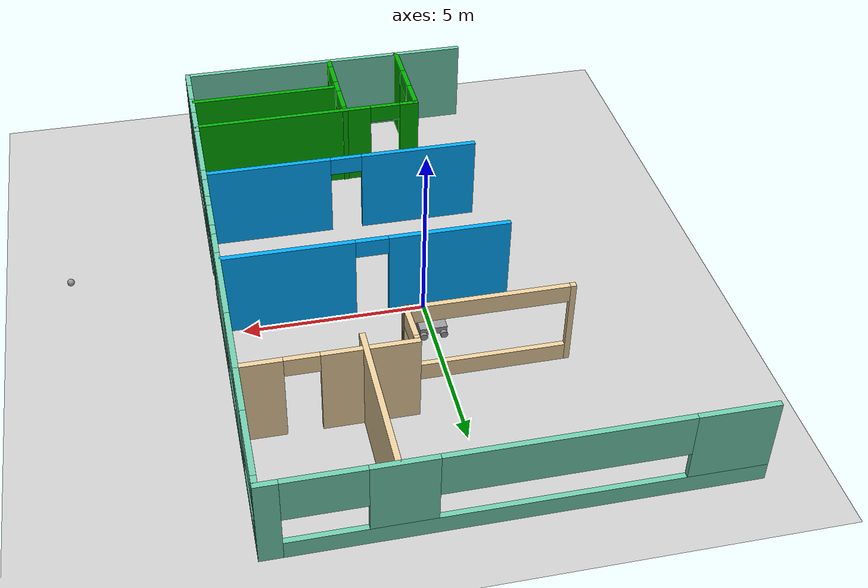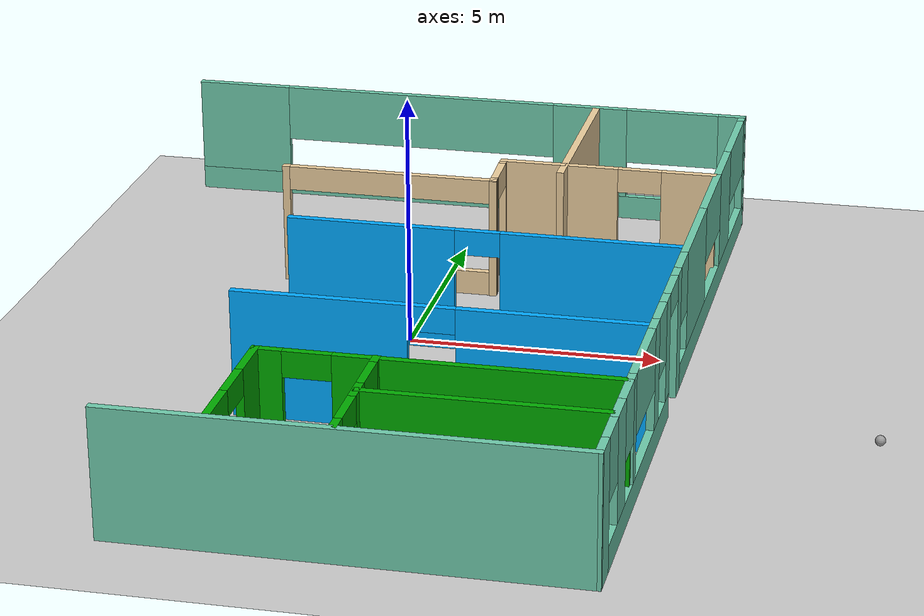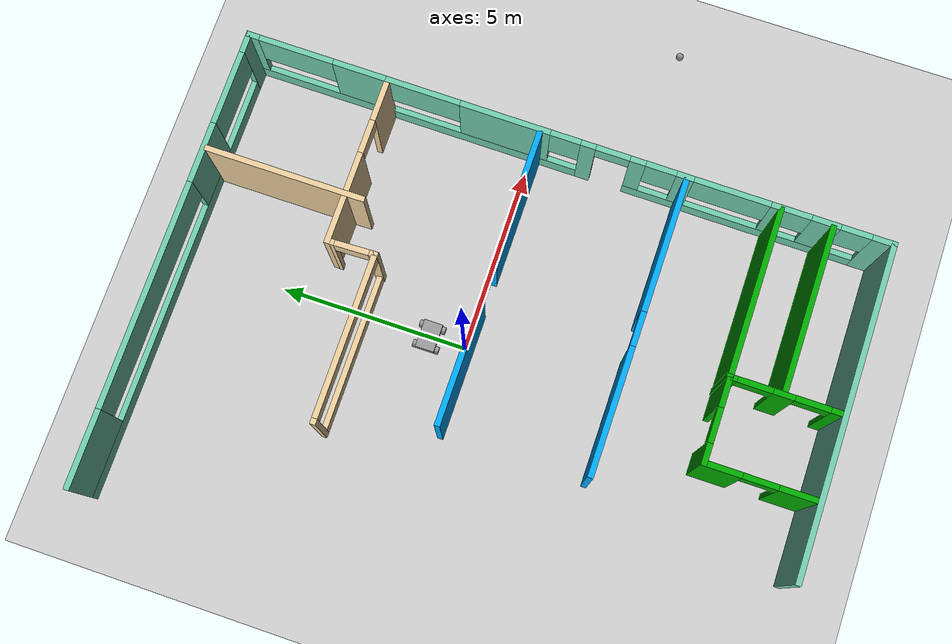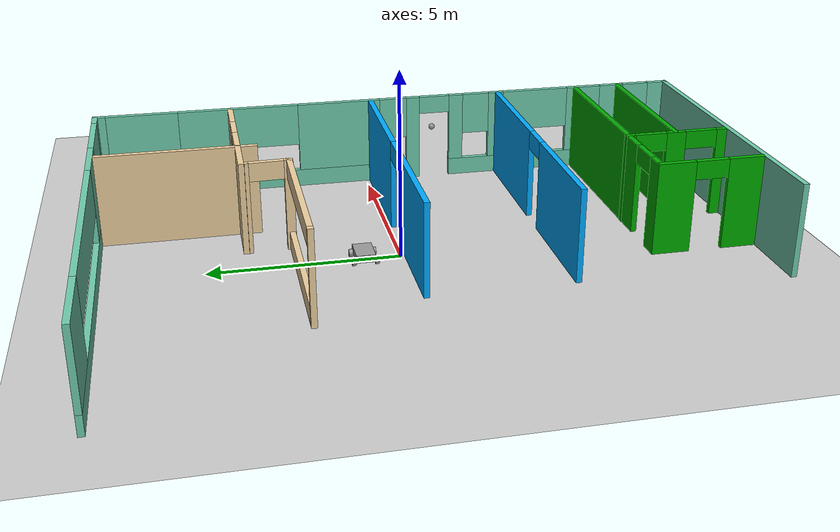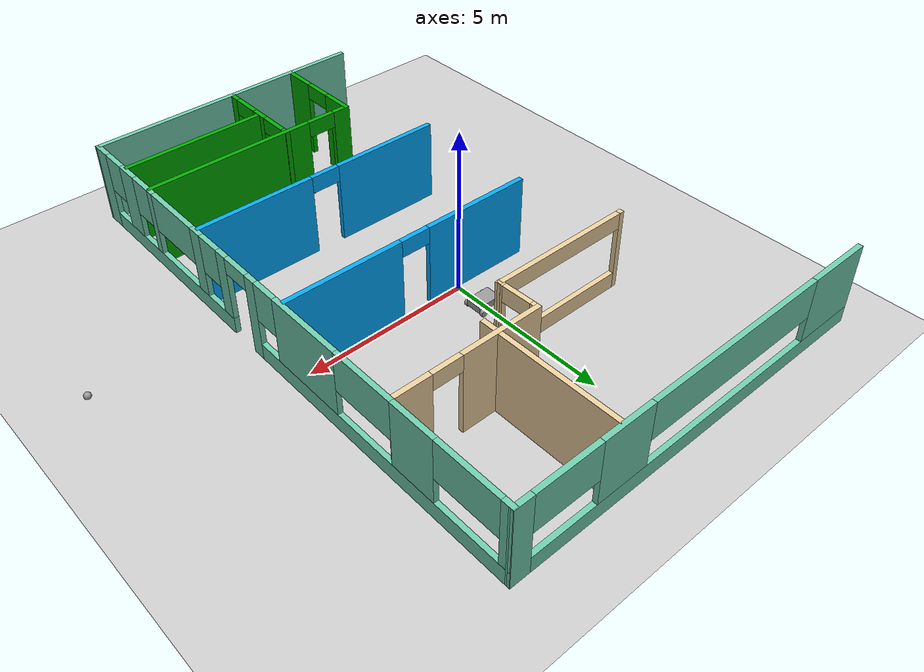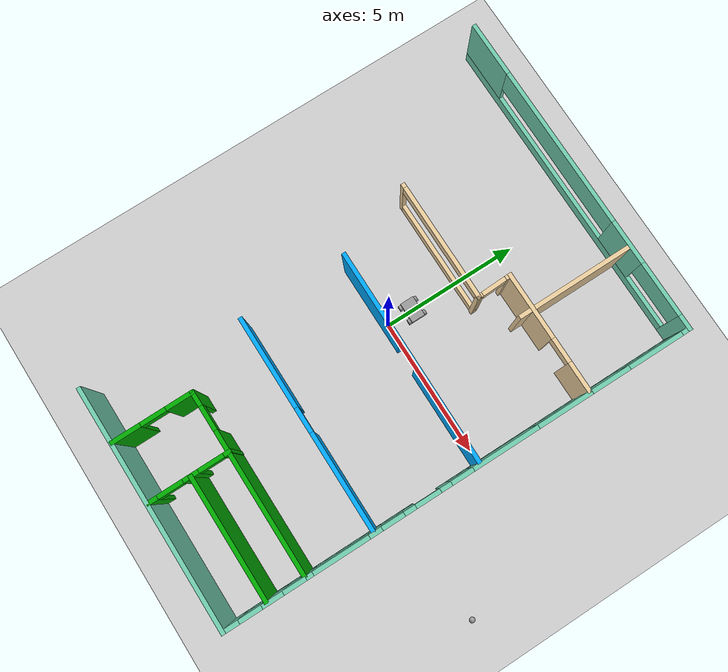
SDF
<sdf version="1.6">
 <world name="default">
  <model name="ground_plane">
   <static>1</static>
   <link name="link">
    <collision name="collision">
     <geometry><plane><normal>0 0 1</normal><size>100 100</size></plane></geometry>
     <surface><friction><ode><mu>100</mu><mu2>50</mu2></ode></friction></surface>
    </collision>
    <visual name="visual">
     <cast_shadows>0</cast_shadows>
     <geometry><plane><normal>0 0 1</normal><size>100 100</size></plane></geometry>
     <material>
      <script><uri>file://media/materials/scripts/gazebo.material</uri><name>Gazebo/Grey</name></script>
     </material>
    </visual>
   </link>
  </model>
  <model name="rc_bot">
   <link name="link_0">
    <pose>0 0 0.079996 0 -0 0</pose>
    <inertial>
     <mass>1</mass>
     <inertia>
      <ixx>0.166667</ixx>
      <ixy>0</ixy>
      <ixz>0</ixz>
      <iyy>0.166667</iyy>
      <iyz>0</iyz>
      <izz>0.166667</izz>
     </inertia>
    </inertial>
    <visual name="visual">
     <geometry><box><size>0.75 0.5 0.2</size></box></geometry>
     <material>
      <lighting>1</lighting>
      <script><uri>file://media/materials/scripts/gazebo.material</uri><name>Gazebo/Grey</name></script>
      <shader type="pixel"><normal_map>__default__</normal_map></shader>
      <ambient>0.3 0.3 0.3 1</ambient>
      <diffuse>0.7 0.7 0.7 1</diffuse>
      <specular>0.01 0.01 0.01 1</specular>
      <emissive>0 0 0 1</emissive>
     </material>
    </visual>
    <collision name="collision">
     <geometry><box><size>0.75 0.5 0.2</size></box></geometry>
     <surface>
      <friction>
       <ode><mu>1</mu><mu2>1</mu2><fdir1>0 0 0</fdir1><slip1>0</slip1><slip2>0</slip2></ode>
       <torsional>
        <coefficient>1</coefficient>
        <patch_radius>0</patch_radius>
        <surface_radius>0</surface_radius>
        <use_patch_radius>1</use_patch_radius>
        <ode><slip>0</slip></ode>
       </torsional>
      </friction>
      <bounce><restitution_coefficient>0</restitution_coefficient><threshold>1e+06</threshold></bounce>
      <contact>
       <collide_without_contact>0</collide_without_contact>
       <collide_without_contact_bitmask>1</collide_without_contact_bitmask>
       <collide_bitmask>1</collide_bitmask>
       <ode>
        <soft_cfm>0</soft_cfm>
        <soft_erp>0.2</soft_erp>
        <kp>1e+13</kp>
        <kd>1</kd>
        <max_vel>0.01</max_vel>
        <min_depth>0</min_depth>
       </ode>
       <bullet>
        <split_impulse>1</split_impulse>
        <split_impulse_penetration_threshold>-0.01</split_impulse_penetration_threshold>
        <soft_cfm>0</soft_cfm>
        <soft_erp>0.2</soft_erp>
        <kp>1e+13</kp>
        <kd>1</kd>
       </bullet>
      </contact>
     </surface>
    </collision>
   </link>
   <link name="link_1_clone_clone_0">
    <pose>0.275 0.30001 -0.019999 1.5707 -0 0</pose>
    <inertial>
     <mass>1</mass>
     <inertia><ixx>0.145833</ixx><ixy>0</ixy><ixz>0</ixz><iyy>0.145833</iyy><iyz>0</iyz><izz>0.125</izz></inertia>
    </inertial>
    <visual name="visual">
     <geometry><cylinder><radius>0.1</radius><length>0.1</length></cylinder></geometry>
     <material>
      <lighting>1</lighting>
      <script><uri>file://media/materials/scripts/gazebo.material</uri><name>Gazebo/Grey</name></script>
      <shader type="pixel"><normal_map>__default__</normal_map></shader>
      <ambient>0.3 0.3 0.3 1</ambient>
      <diffuse>0.7 0.7 0.7 1</diffuse>
      <specular>0.01 0.01 0.01 1</specular>
      <emissive>0 0 0 1</emissive>
     </material>
    </visual>
    <collision name="collision">
     <geometry><cylinder><radius>0.1</radius><length>0.1</length></cylinder></geometry>
     <surface>
      <friction>
       <ode><mu>1</mu><mu2>1</mu2><fdir1>0 0 0</fdir1><slip1>0</slip1><slip2>0</slip2></ode>
       <torsional>
        <coefficient>1</coefficient>
        <patch_radius>0</patch_radius>
        <surface_radius>0</surface_radius>
        <use_patch_radius>1</use_patch_radius>
        <ode><slip>0</slip></ode>
       </torsional>
      </friction>
      <bounce><restitution_coefficient>0</restitution_coefficient><threshold>1e+06</threshold></bounce>
      <contact>
       <collide_without_contact>0</collide_without_contact>
       <collide_without_contact_bitmask>1</collide_without_contact_bitmask>
       <collide_bitmask>1</collide_bitmask>
       <ode>
        <soft_cfm>0</soft_cfm>
        <soft_erp>0.2</soft_erp>
        <kp>1e+13</kp>
        <kd>1</kd>
        <max_vel>0.01</max_vel>
        <min_depth>0</min_depth>
       </ode>
       <bullet>
        <split_impulse>1</split_impulse>
        <split_impulse_penetration_threshold>-0.01</split_impulse_penetration_threshold>
        <soft_cfm>0</soft_cfm>
        <soft_erp>0.2</soft_erp>
        <kp>1e+13</kp>
        <kd>1</kd>
       </bullet>
      </contact>
     </surface>
    </collision>
   </link>
   <link name="link_1_clone_clone_0_clone">
    <pose>-0.275 0.30001 -0.019999 1.5707 -0 0</pose>
    <inertial>
     <mass>1</mass>
     <inertia><ixx>0.145833</ixx><ixy>0</ixy><ixz>0</ixz><iyy>0.145833</iyy><iyz>0</iyz><izz>0.125</izz></inertia>
    </inertial>
    <visual name="visual">
     <geometry><cylinder><radius>0.1</radius><length>0.1</length></cylinder></geometry>
     <material>
      <lighting>1</lighting>
      <script><uri>file://media/materials/scripts/gazebo.material</uri><name>Gazebo/Grey</name></script>
      <shader type="pixel"><normal_map>__default__</normal_map></shader>
      <ambient>0.3 0.3 0.3 1</ambient>
      <diffuse>0.7 0.7 0.7 1</diffuse>
      <specular>0.01 0.01 0.01 1</specular>
      <emissive>0 0 0 1</emissive>
     </material>
    </visual>
    <collision name="collision">
     <geometry><cylinder><radius>0.1</radius><length>0.1</length></cylinder></geometry>
     <surface>
      <friction>
       <ode><mu>1</mu><mu2>1</mu2><fdir1>0 0 0</fdir1><slip1>0</slip1><slip2>0</slip2></ode>
       <torsional>
        <coefficient>1</coefficient>
        <patch_radius>0</patch_radius>
        <surface_radius>0</surface_radius>
        <use_patch_radius>1</use_patch_radius>
        <ode><slip>0</slip></ode>
       </torsional>
      </friction>
      <bounce><restitution_coefficient>0</restitution_coefficient><threshold>1e+06</threshold></bounce>
      <contact>
       <collide_without_contact>0</collide_without_contact>
       <collide_without_contact_bitmask>1</collide_without_contact_bitmask>
       <collide_bitmask>1</collide_bitmask>
       <ode>
        <soft_cfm>0</soft_cfm>
        <soft_erp>0.2</soft_erp>
        <kp>1e+13</kp>
        <kd>1</kd>
        <max_vel>0.01</max_vel>
        <min_depth>0</min_depth>
       </ode>
       <bullet>
        <split_impulse>1</split_impulse>
        <split_impulse_penetration_threshold>-0.01</split_impulse_penetration_threshold>
        <soft_cfm>0</soft_cfm>
        <soft_erp>0.2</soft_erp>
        <kp>1e+13</kp>
        <kd>1</kd>
       </bullet>
      </contact>
     </surface>
    </collision>
   </link>
   <link name="link_1_clone_clone_0_clone_0">
    <pose>0.275 -0.30001 -0.019999 1.5707 -0 0</pose>
    <inertial>
     <mass>1</mass>
     <inertia><ixx>0.145833</ixx><ixy>0</ixy><ixz>0</ixz><iyy>0.145833</iyy><iyz>0</iyz><izz>0.125</izz></inertia>
    </inertial>
    <visual name="visual">
     <geometry><cylinder><radius>0.1</radius><length>0.1</length></cylinder></geometry>
     <material>
      <lighting>1</lighting>
      <script><uri>file://media/materials/scripts/gazebo.material</uri><name>Gazebo/Grey</name></script>
      <shader type="pixel"><normal_map>__default__</normal_map></shader>
      <ambient>0.3 0.3 0.3 1</ambient>
      <diffuse>0.7 0.7 0.7 1</diffuse>
      <specular>0.01 0.01 0.01 1</specular>
      <emissive>0 0 0 1</emissive>
     </material>
    </visual>
    <collision name="collision">
     <geometry><cylinder><radius>0.1</radius><length>0.1</length></cylinder></geometry>
     <surface>
      <friction>
       <ode><mu>1</mu><mu2>1</mu2><fdir1>0 0 0</fdir1><slip1>0</slip1><slip2>0</slip2></ode>
       <torsional>
        <coefficient>1</coefficient>
        <patch_radius>0</patch_radius>
        <surface_radius>0</surface_radius>
        <use_patch_radius>1</use_patch_radius>
        <ode><slip>0</slip></ode>
       </torsional>
      </friction>
      <bounce><restitution_coefficient>0</restitution_coefficient><threshold>1e+06</threshold></bounce>
      <contact>
       <collide_without_contact>0</collide_without_contact>
       <collide_without_contact_bitmask>1</collide_without_contact_bitmask>
       <collide_bitmask>1</collide_bitmask>
       <ode>
        <soft_cfm>0</soft_cfm>
        <soft_erp>0.2</soft_erp>
        <kp>1e+13</kp>
        <kd>1</kd>
        <max_vel>0.01</max_vel>
        <min_depth>0</min_depth>
       </ode>
       <bullet>
        <split_impulse>1</split_impulse>
        <split_impulse_penetration_threshold>-0.01</split_impulse_penetration_threshold>
        <soft_cfm>0</soft_cfm>
        <soft_erp>0.2</soft_erp>
        <kp>1e+13</kp>
        <kd>1</kd>
       </bullet>
      </contact>
     </surface>
    </collision>
   </link>
   <link name="link_1_clone_clone_0_clone_1">
    <pose>-0.275 -0.30001 -0.019999 1.5707 -0 0</pose>
    <inertial>
     <mass>1</mass>
     <inertia><ixx>0.145833</ixx><ixy>0</ixy><ixz>0</ixz><iyy>0.145833</iyy><iyz>0</iyz><izz>0.125</izz></inertia>
    </inertial>
    <visual name="visual">
     <geometry><cylinder><radius>0.1</radius><length>0.1</length></cylinder></geometry>
     <material>
      <lighting>1</lighting>
      <script><uri>file://media/materials/scripts/gazebo.material</uri><name>Gazebo/Grey</name></script>
      <shader type="pixel"><normal_map>__default__</normal_map></shader>
      <ambient>0.3 0.3 0.3 1</ambient>
      <diffuse>0.7 0.7 0.7 1</diffuse>
      <specular>0.01 0.01 0.01 1</specular>
      <emissive>0 0 0 1</emissive>
     </material>
    </visual>
    <collision name="collision">
     <geometry><cylinder><radius>0.1</radius><length>0.1</length></cylinder></geometry>
     <surface>
      <friction>
       <ode><mu>1</mu><mu2>1</mu2><fdir1>0 0 0</fdir1><slip1>0</slip1><slip2>0</slip2></ode>
       <torsional>
        <coefficient>1</coefficient>
        <patch_radius>0</patch_radius>
        <surface_radius>0</surface_radius>
        <use_patch_radius>1</use_patch_radius>
        <ode><slip>0</slip></ode>
       </torsional>
      </friction>
      <bounce><restitution_coefficient>0</restitution_coefficient><threshold>1e+06</threshold></bounce>
      <contact>
       <collide_without_contact>0</collide_without_contact>
       <collide_without_contact_bitmask>1</collide_without_contact_bitmask>
       <collide_bitmask>1</collide_bitmask>
       <ode>
        <soft_cfm>0</soft_cfm>
        <soft_erp>0.2</soft_erp>
        <kp>1e+13</kp>
        <kd>1</kd>
        <max_vel>0.01</max_vel>
        <min_depth>0</min_depth>
       </ode>
       <bullet>
        <split_impulse>1</split_impulse>
        <split_impulse_penetration_threshold>-0.01</split_impulse_penetration_threshold>
        <soft_cfm>0</soft_cfm>
        <soft_erp>0.2</soft_erp>
        <kp>1e+13</kp>
        <kd>1</kd>
       </bullet>
      </contact>
     </surface>
    </collision>
   </link>
   <joint name="link_0_JOINT_0" type="revolute">
    <parent>link_0</parent>
    <child>link_1_clone_clone_0</child>
    <axis>
     <xyz>0 0 1</xyz>
     <use_parent_model_frame>0</use_parent_model_frame>
     <limit>
      <lower>-1.79769e+308</lower>
      <upper>1.79769e+308</upper>
      <effort>-1</effort>
      <velocity>-1</velocity>
     </limit>
     <dynamics>
      <spring_reference>0</spring_reference>
      <spring_stiffness>0</spring_stiffness>
      <damping>0</damping>
      <friction>0</friction>
     </dynamics>
    </axis>
    <physics>
     <ode><limit><cfm>0</cfm><erp>0.2</erp></limit><suspension><cfm>0</cfm><erp>0.2</erp></suspension></ode>
    </physics>
   </joint>
   <joint name="link_0_JOINT_3" type="revolute">
    <parent>link_0</parent>
    <child>link_1_clone_clone_0_clone</child>
    <axis>
     <xyz>0 0 1</xyz>
     <use_parent_model_frame>0</use_parent_model_frame>
     <limit>
      <lower>-1.79769e+308</lower>
      <upper>1.79769e+308</upper>
      <effort>-1</effort>
      <velocity>-1</velocity>
     </limit>
     <dynamics>
      <spring_reference>0</spring_reference>
      <spring_stiffness>0</spring_stiffness>
      <damping>0</damping>
     </dynamics>
    </axis>
    <physics>
     <ode><limit><cfm>0</cfm><erp>0.2</erp></limit><suspension><cfm>0</cfm><erp>0.2</erp></suspension></ode>
    </physics>
   </joint>
   <joint name="link_0_JOINT_4" type="revolute">
    <parent>link_0</parent>
    <child>link_1_clone_clone_0_clone_0</child>
    <axis>
     <xyz>0 0 1</xyz>
     <use_parent_model_frame>0</use_parent_model_frame>
     <limit>
      <lower>-1.79769e+308</lower>
      <upper>1.79769e+308</upper>
      <effort>-1</effort>
      <velocity>-1</velocity>
     </limit>
     <dynamics>
      <spring_reference>0</spring_reference>
      <spring_stiffness>0</spring_stiffness>
      <damping>0</damping>
     </dynamics>
    </axis>
    <physics>
     <ode><limit><cfm>0</cfm><erp>0.2</erp></limit><suspension><cfm>0</cfm><erp>0.2</erp></suspension></ode>
    </physics>
   </joint>
   <joint name="link_0_JOINT_5" type="revolute">
    <parent>link_0</parent>
    <child>link_1_clone_clone_0_clone_1</child>
    <axis>
     <xyz>0 0 1</xyz>
     <use_parent_model_frame>0</use_parent_model_frame>
     <limit>
      <lower>-1.79769e+308</lower>
      <upper>1.79769e+308</upper>
      <effort>-1</effort>
      <velocity>-1</velocity>
     </limit>
     <dynamics>
      <spring_reference>0</spring_reference>
      <spring_stiffness>0</spring_stiffness>
      <damping>0</damping>
     </dynamics>
    </axis>
    <physics>
     <ode><limit><cfm>0</cfm><erp>0.2</erp></limit><suspension><cfm>0</cfm><erp>0.2</erp></suspension></ode>
    </physics>
   </joint>
   <static>0</static>
   <pose>0.000248 0.974739 0.12 0 1.4e-05 -0.000899</pose>
  </model>
  <model name="Building-1">
   <pose>-1.79482 -0.84337 0 0 -0 0</pose>
   <link name="Wall_57">
    <collision name="Wall_57_Collision">
     <geometry><box><size>8.75 0.15 2.5</size></box></geometry>
     <pose>0 0 1.25 0 -0 0</pose>
    </collision>
    <visual name="Wall_57_Visual">
     <pose>0 0 1.25 0 -0 0</pose>
     <geometry><box><size>8.75 0.15 2.5</size></box></geometry>
     <material>
      <script><uri>file://media/materials/scripts/gazebo.material</uri><name>Gazebo/Grey</name></script>
      <ambient>0.435294 0.796078 0.67451 1</ambient>
     </material>
     <meta><layer>0</layer></meta>
    </visual>
    <pose>2.92943 -8.51391 0 0 -0 0</pose>
   </link>
   <link name="Wall_58">
    <pose>7.27698 -0.015167 0 0 -0 1.5652</pose>
    <visual name="Wall_58_Visual_0">
     <pose>-8.25726 0 1.25 0 -0 0</pose>
     <geometry><box><size>0.633232 0.15 2.5</size></box></geometry>
     <material>
      <script><uri>file://media/materials/scripts/gazebo.material</uri><name>Gazebo/Grey</name></script>
      <ambient>0.435294 0.796078 0.67451 1</ambient>
     </material>
     <meta><layer>0</layer></meta>
    </visual>
    <collision name="Wall_58_Collision_0">
     <geometry><box><size>0.633232 0.15 2.5</size></box></geometry>
     <pose>-8.25726 0 1.25 0 -0 0</pose>
    </collision>
    <visual name="Wall_58_Visual_1">
     <pose>-0.583033 0 1.25 0 -0 0</pose>
     <geometry><box><size>0.396965 0.15 2.5</size></box></geometry>
     <material>
      <script><uri>file://media/materials/scripts/gazebo.material</uri><name>Gazebo/Grey</name></script>
      <ambient>0.435294 0.796078 0.67451 1</ambient>
     </material>
     <meta><layer>0</layer></meta>
    </visual>
    <collision name="Wall_58_Collision_1">
     <geometry><box><size>0.396965 0.15 2.5</size></box></geometry>
     <pose>-0.583033 0 1.25 0 -0 0</pose>
    </collision>
    <visual name="Wall_58_Visual_2">
     <pose>-4.81108 0 0.25 0 -0 0</pose>
     <geometry><box><size>6.25913 0.15 0.5</size></box></geometry>
     <material>
      <script><uri>file://media/materials/scripts/gazebo.material</uri><name>Gazebo/Grey</name></script>
      <ambient>0.435294 0.796078 0.67451 1</ambient>
     </material>
     <meta><layer>0</layer></meta>
    </visual>
    <collision name="Wall_58_Collision_2">
     <geometry><box><size>6.25913 0.15 0.5</size></box></geometry>
     <pose>-4.81108 0 0.25 0 -0 0</pose>
    </collision>
    <visual name="Wall_58_Visual_3">
     <pose>4.09466 0 0.25 0 -0 0</pose>
     <geometry><box><size>8.95843 0.15 0.5</size></box></geometry>
     <material>
      <script><uri>file://media/materials/scripts/gazebo.material</uri><name>Gazebo/Grey</name></script>
      <ambient>0.435294 0.796078 0.67451 1</ambient>
     </material>
     <meta><layer>0</layer></meta>
    </visual>
    <collision name="Wall_58_Collision_3">
     <geometry><box><size>8.95843 0.15 0.5</size></box></geometry>
     <pose>4.09466 0 0.25 0 -0 0</pose>
    </collision>
    <visual name="Wall_58_Visual_4">
     <pose>-6.76763 0 1.5 0 -0 0</pose>
     <geometry><box><size>0.746033 0.15 2</size></box></geometry>
     <material>
      <script><uri>file://media/materials/scripts/gazebo.material</uri><name>Gazebo/Grey</name></script>
      <ambient>0.435294 0.796078 0.67451 1</ambient>
     </material>
     <meta><layer>0</layer></meta>
    </visual>
    <collision name="Wall_58_Collision_4">
     <geometry><box><size>0.746033 0.15 2</size></box></geometry>
     <pose>-6.76763 0 1.5 0 -0 0</pose>
    </collision>
    <visual name="Wall_58_Visual_5">
     <pose>-5.47131 0 1.5 0 -0 0</pose>
     <geometry><box><size>0.246602 0.15 2</size></box></geometry>
     <material>
      <script><uri>file://media/materials/scripts/gazebo.material</uri><name>Gazebo/Grey</name></script>
      <ambient>0.435294 0.796078 0.67451 1</ambient>
     </material>
     <meta><layer>0</layer></meta>
    </visual>
    <collision name="Wall_58_Collision_5">
     <geometry><box><size>0.246602 0.15 2</size></box></geometry>
     <pose>-5.47131 0 1.5 0 -0 0</pose>
    </collision>
    <visual name="Wall_58_Visual_6">
     <pose>-3.12103 0 1.5 0 -0 0</pose>
     <geometry><box><size>0.453955 0.15 2</size></box></geometry>
     <material>
      <script><uri>file://media/materials/scripts/gazebo.material</uri><name>Gazebo/Grey</name></script>
      <ambient>0.435294 0.796078 0.67451 1</ambient>
     </material>
     <meta><layer>0</layer></meta>
    </visual>
    <collision name="Wall_58_Collision_6">
     <geometry><box><size>0.453955 0.15 2</size></box></geometry>
     <pose>-3.12103 0 1.5 0 -0 0</pose>
    </collision>
    <visual name="Wall_58_Visual_7">
     <pose>-1.88778 0 1.5 0 -0 0</pose>
     <geometry><box><size>0.412539 0.15 2</size></box></geometry>
     <material>
      <script><uri>file://media/materials/scripts/gazebo.material</uri><name>Gazebo/Grey</name></script>
      <ambient>0.435294 0.796078 0.67451 1</ambient>
     </material>
     <meta><layer>0</layer></meta>
    </visual>
    <collision name="Wall_58_Collision_7">
     <geometry><box><size>0.412539 0.15 2</size></box></geometry>
     <pose>-1.88778 0 1.5 0 -0 0</pose>
    </collision>
    <visual name="Wall_58_Visual_8">
     <pose>-1.88778 0 1.5 0 -0 0</pose>
     <geometry><box><size>0.412539 0.15 2</size></box></geometry>
     <material>
      <script><uri>file://media/materials/scripts/gazebo.material</uri><name>Gazebo/Grey</name></script>
      <ambient>0.435294 0.796078 0.67451 1</ambient>
     </material>
     <meta><layer>0</layer></meta>
    </visual>
    <collision name="Wall_58_Collision_8">
     <geometry><box><size>0.412539 0.15 2</size></box></geometry>
     <pose>-1.88778 0 1.5 0 -0 0</pose>
    </collision>
    <visual name="Wall_58_Visual_9">
     <pose>1.61766 0 1.5 0 -0 0</pose>
     <geometry><box><size>2.40442 0.15 2</size></box></geometry>
     <material>
      <script><uri>file://media/materials/scripts/gazebo.material</uri><name>Gazebo/Grey</name></script>
      <ambient>0.435294 0.796078 0.67451 1</ambient>
     </material>
     <meta><layer>0</layer></meta>
    </visual>
    <collision name="Wall_58_Collision_9">
     <geometry><box><size>2.40442 0.15 2</size></box></geometry>
     <pose>1.61766 0 1.5 0 -0 0</pose>
    </collision>
    <visual name="Wall_58_Visual_10">
     <pose>5.52613 0 1.5 0 -0 0</pose>
     <geometry><box><size>1.41252 0.15 2</size></box></geometry>
     <material>
      <script><uri>file://media/materials/scripts/gazebo.material</uri><name>Gazebo/Grey</name></script>
      <ambient>0.435294 0.796078 0.67451 1</ambient>
     </material>
     <meta><layer>0</layer></meta>
    </visual>
    <collision name="Wall_58_Collision_10">
     <geometry><box><size>1.41252 0.15 2</size></box></geometry>
     <pose>5.52613 0 1.5 0 -0 0</pose>
    </collision>
    <visual name="Wall_58_Visual_11">
     <pose>8.40314 0 1.5 0 -0 0</pose>
     <geometry><box><size>0.341482 0.15 2</size></box></geometry>
     <material>
      <script><uri>file://media/materials/scripts/gazebo.material</uri><name>Gazebo/Grey</name></script>
      <ambient>0.435294 0.796078 0.67451 1</ambient>
     </material>
     <meta><layer>0</layer></meta>
    </visual>
    <collision name="Wall_58_Collision_11">
     <geometry><box><size>0.341482 0.15 2</size></box></geometry>
     <pose>8.40314 0 1.5 0 -0 0</pose>
    </collision>
    <visual name="Wall_58_Visual_12">
     <pose>-7.54064 0 1.9 0 -0 0</pose>
     <geometry><box><size>0.8 0.15 1.2</size></box></geometry>
     <material>
      <script><uri>file://media/materials/scripts/gazebo.material</uri><name>Gazebo/Grey</name></script>
      <ambient>0.435294 0.796078 0.67451 1</ambient>
     </material>
     <meta><layer>0</layer></meta>
    </visual>
    <collision name="Wall_58_Collision_12">
     <geometry><box><size>0.8 0.15 1.2</size></box></geometry>
     <pose>-7.54064 0 1.9 0 -0 0</pose>
    </collision>
    <visual name="Wall_58_Visual_13">
     <pose>0.01545 0 1.9 0 -0 0</pose>
     <geometry><box><size>0.8 0.15 1.2</size></box></geometry>
     <material>
      <script><uri>file://media/materials/scripts/gazebo.material</uri><name>Gazebo/Grey</name></script>
      <ambient>0.435294 0.796078 0.67451 1</ambient>
     </material>
     <meta><layer>0</layer></meta>
    </visual>
    <collision name="Wall_58_Collision_13">
     <geometry><box><size>0.8 0.15 1.2</size></box></geometry>
     <pose>0.01545 0 1.9 0 -0 0</pose>
    </collision>
    <visual name="Wall_58_Visual_14">
     <pose>-5.99461 0 1.9 0 -0 0</pose>
     <geometry><box><size>0.8 0.15 1.2</size></box></geometry>
     <material>
      <script><uri>file://media/materials/scripts/gazebo.material</uri><name>Gazebo/Grey</name></script>
      <ambient>0.435294 0.796078 0.67451 1</ambient>
     </material>
     <meta><layer>0</layer></meta>
    </visual>
    <collision name="Wall_58_Collision_14">
     <geometry><box><size>0.8 0.15 1.2</size></box></geometry>
     <pose>-5.99461 0 1.9 0 -0 0</pose>
    </collision>
    <visual name="Wall_58_Visual_15">
     <pose>-4.34801 0 1.9 0 -0 0</pose>
     <geometry><box><size>2 0.15 1.2</size></box></geometry>
     <material>
      <script><uri>file://media/materials/scripts/gazebo.material</uri><name>Gazebo/Grey</name></script>
      <ambient>0.435294 0.796078 0.67451 1</ambient>
     </material>
     <meta><layer>0</layer></meta>
    </visual>
    <collision name="Wall_58_Collision_15">
     <geometry><box><size>2 0.15 1.2</size></box></geometry>
     <pose>-4.34801 0 1.9 0 -0 0</pose>
    </collision>
    <visual name="Wall_58_Visual_16">
     <pose>-2.49405 0 1.9 0 -0 0</pose>
     <geometry><box><size>0.8 0.15 1.2</size></box></geometry>
     <material>
      <script><uri>file://media/materials/scripts/gazebo.material</uri><name>Gazebo/Grey</name></script>
      <ambient>0.435294 0.796078 0.67451 1</ambient>
     </material>
     <meta><layer>0</layer></meta>
    </visual>
    <collision name="Wall_58_Collision_16">
     <geometry><box><size>0.8 0.15 1.2</size></box></geometry>
     <pose>-2.49405 0 1.9 0 -0 0</pose>
    </collision>
    <visual name="Wall_58_Visual_17">
     <pose>3.81987 0 1.9 0 -0 0</pose>
     <geometry><box><size>2 0.15 1.2</size></box></geometry>
     <material>
      <script><uri>file://media/materials/scripts/gazebo.material</uri><name>Gazebo/Grey</name></script>
      <ambient>0.435294 0.796078 0.67451 1</ambient>
     </material>
     <meta><layer>0</layer></meta>
    </visual>
    <collision name="Wall_58_Collision_17">
     <geometry><box><size>2 0.15 1.2</size></box></geometry>
     <pose>3.81987 0 1.9 0 -0 0</pose>
    </collision>
    <visual name="Wall_58_Visual_18">
     <pose>7.23239 0 1.9 0 -0 0</pose>
     <geometry><box><size>2 0.15 1.2</size></box></geometry>
     <material>
      <script><uri>file://media/materials/scripts/gazebo.material</uri><name>Gazebo/Grey</name></script>
      <ambient>0.435294 0.796078 0.67451 1</ambient>
     </material>
     <meta><layer>0</layer></meta>
    </visual>
    <collision name="Wall_58_Collision_18">
     <geometry><box><size>2 0.15 1.2</size></box></geometry>
     <pose>7.23239 0 1.9 0 -0 0</pose>
    </collision>
    <visual name="Wall_58_Visual_19">
     <pose>-1.23151 0 2.25 0 -0 0</pose>
     <geometry><box><size>0.9 0.15 0.5</size></box></geometry>
     <material>
      <script><uri>file://media/materials/scripts/gazebo.material</uri><name>Gazebo/Grey</name></script>
      <ambient>0.435294 0.796078 0.67451 1</ambient>
     </material>
     <meta><layer>0</layer></meta>
    </visual>
    <collision name="Wall_58_Collision_19">
     <geometry><box><size>0.9 0.15 0.5</size></box></geometry>
     <pose>-1.23151 0 2.25 0 -0 0</pose>
    </collision>
    <visual name="Wall_58_Visual_20">
     <pose>-1.23151 0 2.25 0 -0 0</pose>
     <geometry><box><size>0.9 0.15 0.5</size></box></geometry>
     <material>
      <script><uri>file://media/materials/scripts/gazebo.material</uri><name>Gazebo/Grey</name></script>
      <ambient>0.435294 0.796078 0.67451 1</ambient>
     </material>
     <meta><layer>0</layer></meta>
    </visual>
    <collision name="Wall_58_Collision_20">
     <geometry><box><size>0.9 0.15 0.5</size></box></geometry>
     <pose>-1.23151 0 2.25 0 -0 0</pose>
    </collision>
   </link>
   <link name="Wall_59">
    <pose>1.27452 8.50244 0 0 -0 3.14159</pose>
    <visual name="Wall_59_Visual_0">
     <pose>-5.83178 0 1.25 0 -0 0</pose>
     <geometry><box><size>0.586429 0.15 2.5</size></box></geometry>
     <material>
      <script><uri>file://media/materials/scripts/gazebo.material</uri><name>Gazebo/Grey</name></script>
      <ambient>0.435294 0.796078 0.67451 1</ambient>
     </material>
     <meta><layer>0</layer></meta>
    </visual>
    <collision name="Wall_59_Collision_0">
     <geometry><box><size>0.586429 0.15 2.5</size></box></geometry>
     <pose>-5.83178 0 1.25 0 -0 0</pose>
    </collision>
    <visual name="Wall_59_Visual_1">
     <pose>0.293215 0 0.25 0 -0 0</pose>
     <geometry><box><size>11.6636 0.15 0.5</size></box></geometry>
     <material>
      <script><uri>file://media/materials/scripts/gazebo.material</uri><name>Gazebo/Grey</name></script>
      <ambient>0.435294 0.796078 0.67451 1</ambient>
     </material>
     <meta><layer>0</layer></meta>
    </visual>
    <collision name="Wall_59_Collision_1">
     <geometry><box><size>11.6636 0.15 0.5</size></box></geometry>
     <pose>0.293215 0 0.25 0 -0 0</pose>
    </collision>
    <visual name="Wall_59_Visual_2">
     <pose>-2.72513 0 1.5 0 -0 0</pose>
     <geometry><box><size>1.62688 0.15 2</size></box></geometry>
     <material>
      <script><uri>file://media/materials/scripts/gazebo.material</uri><name>Gazebo/Grey</name></script>
      <ambient>0.435294 0.796078 0.67451 1</ambient>
     </material>
     <meta><layer>0</layer></meta>
    </visual>
    <collision name="Wall_59_Collision_2">
     <geometry><box><size>1.62688 0.15 2</size></box></geometry>
     <pose>-2.72513 0 1.5 0 -0 0</pose>
    </collision>
    <visual name="Wall_59_Visual_3">
     <pose>5.10665 0 1.5 0 -0 0</pose>
     <geometry><box><size>2.03669 0.15 2</size></box></geometry>
     <material>
      <script><uri>file://media/materials/scripts/gazebo.material</uri><name>Gazebo/Grey</name></script>
      <ambient>0.435294 0.796078 0.67451 1</ambient>
     </material>
     <meta><layer>0</layer></meta>
    </visual>
    <collision name="Wall_59_Collision_3">
     <geometry><box><size>2.03669 0.15 2</size></box></geometry>
     <pose>5.10665 0 1.5 0 -0 0</pose>
    </collision>
    <visual name="Wall_59_Visual_4">
     <pose>-4.53857 0 1.9 0 -0 0</pose>
     <geometry><box><size>2 0.15 1.2</size></box></geometry>
     <material>
      <script><uri>file://media/materials/scripts/gazebo.material</uri><name>Gazebo/Grey</name></script>
      <ambient>0.435294 0.796078 0.67451 1</ambient>
     </material>
     <meta><layer>0</layer></meta>
    </visual>
    <collision name="Wall_59_Collision_4">
     <geometry><box><size>2 0.15 1.2</size></box></geometry>
     <pose>-4.53857 0 1.9 0 -0 0</pose>
    </collision>
    <visual name="Wall_59_Visual_5">
     <pose>1.08831 0 1.9 0 -0 0</pose>
     <geometry><box><size>6 0.15 1.2</size></box></geometry>
     <material>
      <script><uri>file://media/materials/scripts/gazebo.material</uri><name>Gazebo/Grey</name></script>
      <ambient>0.435294 0.796078 0.67451 1</ambient>
     </material>
     <meta><layer>0</layer></meta>
    </visual>
    <collision name="Wall_59_Collision_5">
     <geometry><box><size>6 0.15 1.2</size></box></geometry>
     <pose>1.08831 0 1.9 0 -0 0</pose>
    </collision>
   </link>
   <link name="Wall_78">
    <pose>0.726359 3.51932 0 0 -0 0</pose>
    <visual name="Wall_78_Visual_0">
     <pose>-2.1723 0 1.25 0 -0 0</pose>
     <geometry><box><size>0.155395 0.15 2.5</size></box></geometry>
     <material>
      <script><uri>file://media/materials/scripts/gazebo.material</uri><name>Gazebo/Grey</name></script>
      <ambient>0.921569 0.807843 0.615686 1</ambient>
     </material>
     <meta><layer>0</layer></meta>
    </visual>
    <collision name="Wall_78_Collision_0">
     <geometry><box><size>0.155395 0.15 2.5</size></box></geometry>
     <pose>-2.1723 0 1.25 0 -0 0</pose>
    </collision>
    <visual name="Wall_78_Visual_1">
     <pose>0.077698 0 0.25 0 -0 0</pose>
     <geometry><box><size>4.3446 0.15 0.5</size></box></geometry>
     <material>
      <script><uri>file://media/materials/scripts/gazebo.material</uri><name>Gazebo/Grey</name></script>
      <ambient>0.921569 0.807843 0.615686 1</ambient>
     </material>
     <meta><layer>0</layer></meta>
    </visual>
    <collision name="Wall_78_Collision_1">
     <geometry><box><size>4.3446 0.15 0.5</size></box></geometry>
     <pose>0.077698 0 0.25 0 -0 0</pose>
    </collision>
    <visual name="Wall_78_Visual_2">
     <pose>2.19798 0 1.5 0 -0 0</pose>
     <geometry><box><size>0.104045 0.15 2</size></box></geometry>
     <material>
      <script><uri>file://media/materials/scripts/gazebo.material</uri><name>Gazebo/Grey</name></script>
      <ambient>0.921569 0.807843 0.615686 1</ambient>
     </material>
     <meta><layer>0</layer></meta>
    </visual>
    <collision name="Wall_78_Collision_2">
     <geometry><box><size>0.104045 0.15 2</size></box></geometry>
     <pose>2.19798 0 1.5 0 -0 0</pose>
    </collision>
    <visual name="Wall_78_Visual_3">
     <pose>0.025675 0 2.25 0 -0 0</pose>
     <geometry><box><size>4.24056 0.15 0.5</size></box></geometry>
     <material>
      <script><uri>file://media/materials/scripts/gazebo.material</uri><name>Gazebo/Grey</name></script>
      <ambient>0.921569 0.807843 0.615686 1</ambient>
     </material>
     <meta><layer>0</layer></meta>
    </visual>
    <collision name="Wall_78_Collision_3">
     <geometry><box><size>4.24056 0.15 0.5</size></box></geometry>
     <pose>0.025675 0 2.25 0 -0 0</pose>
    </collision>
   </link>
   <link name="Wall_79">
    <pose>2.8825 4.04585 0 0 -0 1.60536</pose>
    <visual name="Wall_79_Visual_0">
     <pose>-0.503306 0 1.25 0 -0 0</pose>
     <geometry><box><size>0.234806 0.15 2.5</size></box></geometry>
     <material>
      <script><uri>file://media/materials/scripts/gazebo.material</uri><name>Gazebo/Grey</name></script>
      <ambient>0.921569 0.807843 0.615686 1</ambient>
     </material>
     <meta><layer>0</layer></meta>
    </visual>
    <collision name="Wall_79_Collision_0">
     <geometry><box><size>0.234806 0.15 2.5</size></box></geometry>
     <pose>-0.503306 0 1.25 0 -0 0</pose>
    </collision>
    <visual name="Wall_79_Visual_1">
     <pose>0.567403 0 1.25 0 -0 0</pose>
     <geometry><box><size>0.106613 0.15 2.5</size></box></geometry>
     <material>
      <script><uri>file://media/materials/scripts/gazebo.material</uri><name>Gazebo/Grey</name></script>
      <ambient>0.921569 0.807843 0.615686 1</ambient>
     </material>
     <meta><layer>0</layer></meta>
    </visual>
    <collision name="Wall_79_Collision_1">
     <geometry><box><size>0.106613 0.15 2.5</size></box></geometry>
     <pose>0.567403 0 1.25 0 -0 0</pose>
    </collision>
    <visual name="Wall_79_Visual_2">
     <pose>0.064096 0 2.25 0 -0 0</pose>
     <geometry><box><size>0.9 0.15 0.5</size></box></geometry>
     <material>
      <script><uri>file://media/materials/scripts/gazebo.material</uri><name>Gazebo/Grey</name></script>
      <ambient>0.921569 0.807843 0.615686 1</ambient>
     </material>
     <meta><layer>0</layer></meta>
    </visual>
    <collision name="Wall_79_Collision_2">
     <geometry><box><size>0.9 0.15 0.5</size></box></geometry>
     <pose>0.064096 0 2.25 0 -0 0</pose>
    </collision>
   </link>
   <link name="Wall_80">
    <pose>5.03864 4.74211 0 0 -0 0</pose>
    <visual name="Wall_80_Visual_0">
     <pose>-1.01395 0 1.25 0 -0 0</pose>
     <geometry><box><size>2.47211 0.15 2.5</size></box></geometry>
     <material>
      <script><uri>file://media/materials/scripts/gazebo.material</uri><name>Gazebo/Grey</name></script>
      <ambient>0.921569 0.807843 0.615686 1</ambient>
     </material>
     <meta><layer>0</layer></meta>
    </visual>
    <collision name="Wall_80_Collision_0">
     <geometry><box><size>2.47211 0.15 2.5</size></box></geometry>
     <pose>-1.01395 0 1.25 0 -0 0</pose>
    </collision>
    <visual name="Wall_80_Visual_1">
     <pose>1.68606 0 1.25 0 -0 0</pose>
     <geometry><box><size>1.12789 0.15 2.5</size></box></geometry>
     <material>
      <script><uri>file://media/materials/scripts/gazebo.material</uri><name>Gazebo/Grey</name></script>
      <ambient>0.921569 0.807843 0.615686 1</ambient>
     </material>
     <meta><layer>0</layer></meta>
    </visual>
    <collision name="Wall_80_Collision_1">
     <geometry><box><size>1.12789 0.15 2.5</size></box></geometry>
     <pose>1.68606 0 1.25 0 -0 0</pose>
    </collision>
    <visual name="Wall_80_Visual_2">
     <pose>0.672111 0 2.25 0 -0 0</pose>
     <geometry><box><size>0.9 0.15 0.5</size></box></geometry>
     <material>
      <script><uri>file://media/materials/scripts/gazebo.material</uri><name>Gazebo/Grey</name></script>
      <ambient>0.921569 0.807843 0.615686 1</ambient>
     </material>
     <meta><layer>0</layer></meta>
    </visual>
    <collision name="Wall_80_Collision_2">
     <geometry><box><size>0.9 0.15 0.5</size></box></geometry>
     <pose>0.672111 0 2.25 0 -0 0</pose>
    </collision>
   </link>
   <link name="Wall_85">
    <collision name="Wall_85_Collision">
     <geometry><box><size>4.25 0.15 2.5</size></box></geometry>
     <pose>0 0 1.25 0 -0 0</pose>
    </collision>
    <visual name="Wall_85_Visual">
     <pose>0 0 1.25 0 -0 0</pose>
     <geometry><box><size>4.25 0.15 2.5</size></box></geometry>
     <material>
      <script><uri>file://media/materials/scripts/gazebo.material</uri><name>Gazebo/Grey</name></script>
      <ambient>0.921569 0.807843 0.615686 1</ambient>
     </material>
     <meta><layer>0</layer></meta>
    </visual>
    <pose>4.14181 6.34937 0 0 -0 1.5708</pose>
   </link>
   <link name="Wall_89">
    <pose>3.31292 0.676366 0 0 -0 3.13877</pose>
    <visual name="Wall_89_Visual_0">
     <pose>-2.12983 0 1.25 0 -0 0</pose>
     <geometry><box><size>3.58853 0.15 2.5</size></box></geometry>
     <material>
      <script><uri>file://media/materials/scripts/gazebo.material</uri><name>Gazebo/Grey</name></script>
      <ambient>0 0.666667 1 1</ambient>
     </material>
     <meta><layer>0</layer></meta>
    </visual>
    <collision name="Wall_89_Collision_0">
     <geometry><box><size>3.58853 0.15 2.5</size></box></geometry>
     <pose>-2.12983 0 1.25 0 -0 0</pose>
    </collision>
    <visual name="Wall_89_Visual_1">
     <pose>2.24427 0 1.25 0 -0 0</pose>
     <geometry><box><size>3.35967 0.15 2.5</size></box></geometry>
     <material>
      <script><uri>file://media/materials/scripts/gazebo.material</uri><name>Gazebo/Grey</name></script>
      <ambient>0 0.666667 1 1</ambient>
     </material>
     <meta><layer>0</layer></meta>
    </visual>
    <collision name="Wall_89_Collision_1">
     <geometry><box><size>3.35967 0.15 2.5</size></box></geometry>
     <pose>2.24427 0 1.25 0 -0 0</pose>
    </collision>
    <visual name="Wall_89_Visual_2">
     <pose>0.114431 0 2.25 0 -0 0</pose>
     <geometry><box><size>0.9 0.15 0.5</size></box></geometry>
     <material>
      <script><uri>file://media/materials/scripts/gazebo.material</uri><name>Gazebo/Grey</name></script>
      <ambient>0 0.666667 1 1</ambient>
     </material>
     <meta><layer>0</layer></meta>
    </visual>
    <collision name="Wall_89_Collision_2">
     <geometry><box><size>0.9 0.15 0.5</size></box></geometry>
     <pose>0.114431 0 2.25 0 -0 0</pose>
    </collision>
   </link>
   <link name="Wall_91">
    <pose>3.31292 -3.17363 0 0 0 -0.002817</pose>
    <visual name="Wall_91_Visual_0">
     <pose>-2.24472 0 1.25 0 -0 0</pose>
     <geometry><box><size>3.35877 0.15 2.5</size></box></geometry>
     <material>
      <script><uri>file://media/materials/scripts/gazebo.material</uri><name>Gazebo/Grey</name></script>
      <ambient>0 0.666667 1 1</ambient>
     </material>
     <meta><layer>0</layer></meta>
    </visual>
    <collision name="Wall_91_Collision_0">
     <geometry><box><size>3.35877 0.15 2.5</size></box></geometry>
     <pose>-2.24472 0 1.25 0 -0 0</pose>
    </collision>
    <visual name="Wall_91_Visual_1">
     <pose>2.12938 0 1.25 0 -0 0</pose>
     <geometry><box><size>3.58944 0.15 2.5</size></box></geometry>
     <material>
      <script><uri>file://media/materials/scripts/gazebo.material</uri><name>Gazebo/Grey</name></script>
      <ambient>0 0.666667 1 1</ambient>
     </material>
     <meta><layer>0</layer></meta>
    </visual>
    <collision name="Wall_91_Collision_1">
     <geometry><box><size>3.58944 0.15 2.5</size></box></geometry>
     <pose>2.12938 0 1.25 0 -0 0</pose>
    </collision>
    <visual name="Wall_91_Visual_2">
     <pose>-0.115334 0 2.25 0 -0 0</pose>
     <geometry><box><size>0.9 0.15 0.5</size></box></geometry>
     <material>
      <script><uri>file://media/materials/scripts/gazebo.material</uri><name>Gazebo/Grey</name></script>
      <ambient>0 0.666667 1 1</ambient>
     </material>
     <meta><layer>0</layer></meta>
    </visual>
    <collision name="Wall_91_Collision_2">
     <geometry><box><size>0.9 0.15 0.5</size></box></geometry>
     <pose>-0.115334 0 2.25 0 -0 0</pose>
    </collision>
   </link>
   <link name="Wall_93">
    <pose>3.89939 -5.62209 0 0 -0 3.14159</pose>
    <visual name="Wall_93_Visual_0">
     <pose>-0.736455 0 1.25 0 -0 0</pose>
     <geometry><box><size>5.27709 0.15 2.5</size></box></geometry>
     <material>
      <script><uri>file://media/materials/scripts/gazebo.material</uri><name>Gazebo/Grey</name></script>
      <ambient>0 0.666667 0 1</ambient>
     </material>
     <meta><layer>0</layer></meta>
    </visual>
    <collision name="Wall_93_Collision_0">
     <geometry><box><size>5.27709 0.15 2.5</size></box></geometry>
     <pose>-0.736455 0 1.25 0 -0 0</pose>
    </collision>
    <visual name="Wall_93_Visual_1">
     <pose>3.08854 0 1.25 0 -0 0</pose>
     <geometry><box><size>0.572909 0.15 2.5</size></box></geometry>
     <material>
      <script><uri>file://media/materials/scripts/gazebo.material</uri><name>Gazebo/Grey</name></script>
      <ambient>0 0.666667 0 1</ambient>
     </material>
     <meta><layer>0</layer></meta>
    </visual>
    <collision name="Wall_93_Collision_1">
     <geometry><box><size>0.572909 0.15 2.5</size></box></geometry>
     <pose>3.08854 0 1.25 0 -0 0</pose>
    </collision>
    <visual name="Wall_93_Visual_2">
     <pose>2.35209 0 2.25 0 -0 0</pose>
     <geometry><box><size>0.9 0.15 0.5</size></box></geometry>
     <material>
      <script><uri>file://media/materials/scripts/gazebo.material</uri><name>Gazebo/Grey</name></script>
      <ambient>0 0.666667 0 1</ambient>
     </material>
     <meta><layer>0</layer></meta>
    </visual>
    <collision name="Wall_93_Collision_2">
     <geometry><box><size>0.9 0.15 0.5</size></box></geometry>
     <pose>2.35209 0 2.25 0 -0 0</pose>
    </collision>
   </link>
   <link name="Wall_94">
    <pose>0.599385 -7.04709 0 0 0 -1.5708</pose>
    <visual name="Wall_94_Visual_0">
     <pose>-0.985126 0 1.25 0 -0 0</pose>
     <geometry><box><size>1.02975 0.15 2.5</size></box></geometry>
     <material>
      <script><uri>file://media/materials/scripts/gazebo.material</uri><name>Gazebo/Grey</name></script>
      <ambient>0 0.666667 0 1</ambient>
     </material>
     <meta><layer>0</layer></meta>
    </visual>
    <collision name="Wall_94_Collision_0">
     <geometry><box><size>1.02975 0.15 2.5</size></box></geometry>
     <pose>-0.985126 0 1.25 0 -0 0</pose>
    </collision>
    <visual name="Wall_94_Visual_1">
     <pose>0.964874 0 1.25 0 -0 0</pose>
     <geometry><box><size>1.07025 0.15 2.5</size></box></geometry>
     <material>
      <script><uri>file://media/materials/scripts/gazebo.material</uri><name>Gazebo/Grey</name></script>
      <ambient>0 0.666667 0 1</ambient>
     </material>
     <meta><layer>0</layer></meta>
    </visual>
    <collision name="Wall_94_Collision_1">
     <geometry><box><size>1.07025 0.15 2.5</size></box></geometry>
     <pose>0.964874 0 1.25 0 -0 0</pose>
    </collision>
    <visual name="Wall_94_Visual_2">
     <pose>-0.020251 0 2.25 0 -0 0</pose>
     <geometry><box><size>0.9 0.15 0.5</size></box></geometry>
     <material>
      <script><uri>file://media/materials/scripts/gazebo.material</uri><name>Gazebo/Grey</name></script>
      <ambient>0 0.666667 0 1</ambient>
     </material>
     <meta><layer>0</layer></meta>
    </visual>
    <collision name="Wall_94_Collision_2">
     <geometry><box><size>0.9 0.15 0.5</size></box></geometry>
     <pose>-0.020251 0 2.25 0 -0 0</pose>
    </collision>
   </link>
   <link name="Wall_97">
    <pose>2.77957 -7.0275 0 0 0 -1.5708</pose>
    <visual name="Wall_97_Visual_0">
     <pose>-1.36324 0 1.25 0 -0 0</pose>
     <geometry><box><size>0.273518 0.15 2.5</size></box></geometry>
     <material>
      <script><uri>file://media/materials/scripts/gazebo.material</uri><name>Gazebo/Grey</name></script>
      <ambient>0 0.666667 0 1</ambient>
     </material>
     <meta><layer>0</layer></meta>
    </visual>
    <collision name="Wall_97_Collision_0">
     <geometry><box><size>0.273518 0.15 2.5</size></box></geometry>
     <pose>-1.36324 0 1.25 0 -0 0</pose>
    </collision>
    <visual name="Wall_97_Visual_1">
     <pose>-0.051396 0 1.25 0 -0 0</pose>
     <geometry><box><size>0.550171 0.15 2.5</size></box></geometry>
     <material>
      <script><uri>file://media/materials/scripts/gazebo.material</uri><name>Gazebo/Grey</name></script>
      <ambient>0 0.666667 0 1</ambient>
     </material>
     <meta><layer>0</layer></meta>
    </visual>
    <collision name="Wall_97_Collision_1">
     <geometry><box><size>0.550171 0.15 2.5</size></box></geometry>
     <pose>-0.051396 0 1.25 0 -0 0</pose>
    </collision>
    <visual name="Wall_97_Visual_2">
     <pose>1.31184 0 1.25 0 -0 0</pose>
     <geometry><box><size>0.376311 0.15 2.5</size></box></geometry>
     <material>
      <script><uri>file://media/materials/scripts/gazebo.material</uri><name>Gazebo/Grey</name></script>
      <ambient>0 0.666667 0 1</ambient>
     </material>
     <meta><layer>0</layer></meta>
    </visual>
    <collision name="Wall_97_Collision_2">
     <geometry><box><size>0.376311 0.15 2.5</size></box></geometry>
     <pose>1.31184 0 1.25 0 -0 0</pose>
    </collision>
    <visual name="Wall_97_Visual_3">
     <pose>-0.776482 0 2.25 0 -0 0</pose>
     <geometry><box><size>0.9 0.15 0.5</size></box></geometry>
     <material>
      <script><uri>file://media/materials/scripts/gazebo.material</uri><name>Gazebo/Grey</name></script>
      <ambient>0 0.666667 0 1</ambient>
     </material>
     <meta><layer>0</layer></meta>
    </visual>
    <collision name="Wall_97_Collision_3">
     <geometry><box><size>0.9 0.15 0.5</size></box></geometry>
     <pose>-0.776482 0 2.25 0 -0 0</pose>
    </collision>
    <visual name="Wall_97_Visual_4">
     <pose>0.673689 0 2.25 0 -0 0</pose>
     <geometry><box><size>0.9 0.15 0.5</size></box></geometry>
     <material>
      <script><uri>file://media/materials/scripts/gazebo.material</uri><name>Gazebo/Grey</name></script>
      <ambient>0 0.666667 0 1</ambient>
     </material>
     <meta><layer>0</layer></meta>
    </visual>
    <collision name="Wall_97_Collision_4">
     <geometry><box><size>0.9 0.15 0.5</size></box></geometry>
     <pose>0.673689 0 2.25 0 -0 0</pose>
    </collision>
   </link>
   <link name="Wall_99">
    <collision name="Wall_99_Collision">
     <geometry><box><size>4.5 0.15 2.5</size></box></geometry>
     <pose>0 0 1.25 0 -0 0</pose>
    </collision>
    <visual name="Wall_99_Visual">
     <pose>0 0 1.25 0 -0 0</pose>
     <geometry><box><size>4.5 0.15 2.5</size></box></geometry>
     <material>
      <script><uri>file://media/materials/scripts/gazebo.material</uri><name>Gazebo/Grey</name></script>
      <ambient>0 0.666667 0 1</ambient>
     </material>
     <meta><layer>0</layer></meta>
    </visual>
    <pose>4.97952 -6.97437 0 0 -0 0</pose>
   </link>
   <static>1</static>
  </model>
  <model name="my_ball">
   <link name="link_0">
    <inertial>
     <mass>1</mass>
     <inertia><ixx>0.1</ixx><ixy>0</ixy><ixz>0</ixz><iyy>0.1</iyy><iyz>0</iyz><izz>0.1</izz></inertia>
    </inertial>
    <visual name="visual">
     <geometry><sphere><radius>0.1</radius></sphere></geometry>
     <material>
      <lighting>1</lighting>
      <script><uri>file://media/materials/scripts/gazebo.material</uri><name>Gazebo/Grey</name></script>
      <shader type="pixel"><normal_map>__default__</normal_map></shader>
      <ambient>1 1 1 1</ambient>
      <diffuse>1 1 1 1</diffuse>
      <specular>1 1 1 1</specular>
      <emissive>0 0 0 1</emissive>
     </material>
    </visual>
    <collision name="collision">
     <geometry><sphere><radius>0.1</radius></sphere></geometry>
     <surface>
      <friction>
       <ode><mu>1</mu><mu2>1</mu2><fdir1>0 0 0</fdir1><slip1>0</slip1><slip2>0</slip2></ode>
       <torsional>
        <coefficient>1</coefficient>
        <patch_radius>0</patch_radius>
        <surface_radius>0</surface_radius>
        <use_patch_radius>1</use_patch_radius>
        <ode><slip>0</slip></ode>
       </torsional>
      </friction>
      <bounce><restitution_coefficient>0</restitution_coefficient><threshold>1e+06</threshold></bounce>
      <contact>
       <collide_without_contact>0</collide_without_contact>
       <collide_without_contact_bitmask>1</collide_without_contact_bitmask>
       <collide_bitmask>1</collide_bitmask>
       <ode>
        <soft_cfm>0</soft_cfm>
        <soft_erp>0.2</soft_erp>
        <kp>1e+13</kp>
        <kd>1</kd>
        <max_vel>0.01</max_vel>
        <min_depth>0</min_depth>
       </ode>
       <bullet>
        <split_impulse>1</split_impulse>
        <split_impulse_penetration_threshold>-0.01</split_impulse_penetration_threshold>
        <soft_cfm>0</soft_cfm>
        <soft_erp>0.2</soft_erp>
        <kp>1e+13</kp>
        <kd>1</kd>
       </bullet>
      </contact>
     </surface>
    </collision>
   </link>
   <static>0</static>
   <pose>9.51733 -2.93298 0.1 0 -0 0</pose>
  </model>
 </world>
</sdf>
